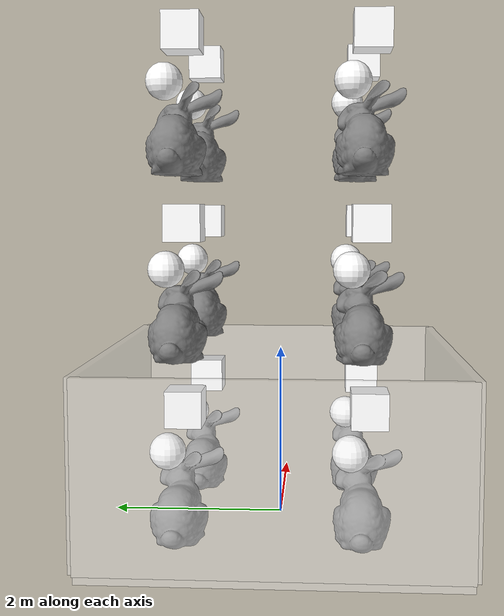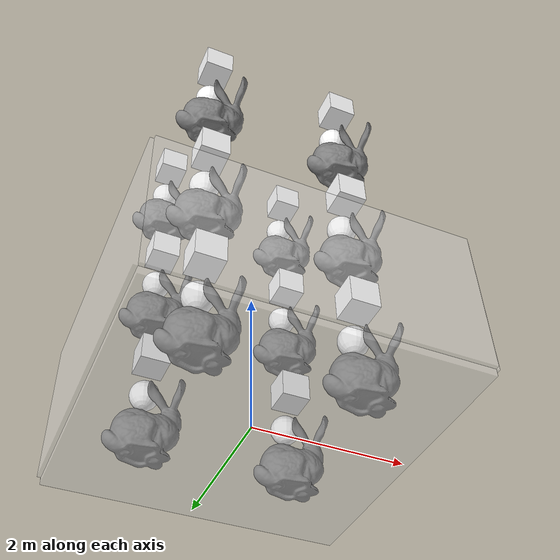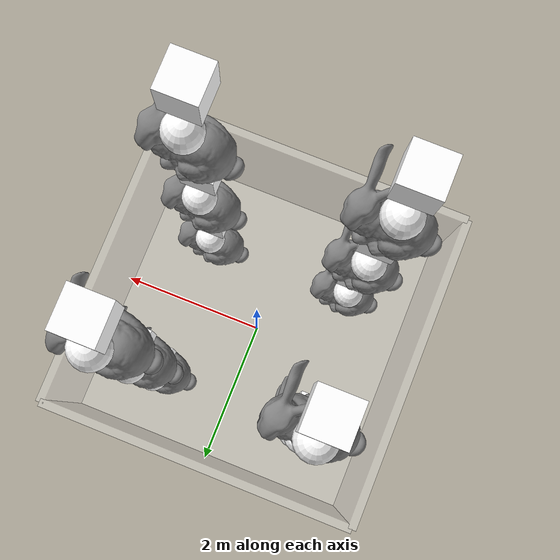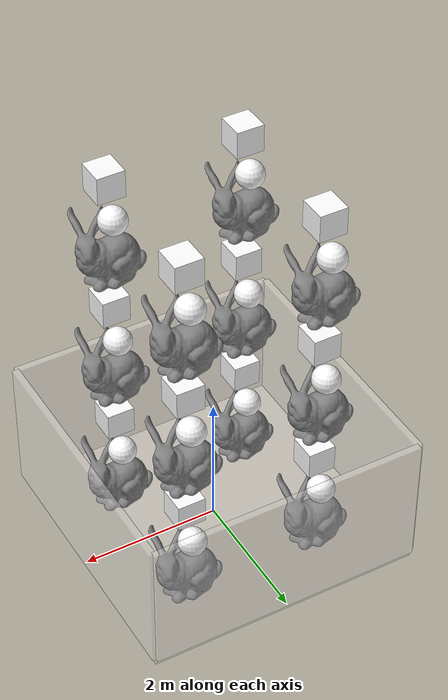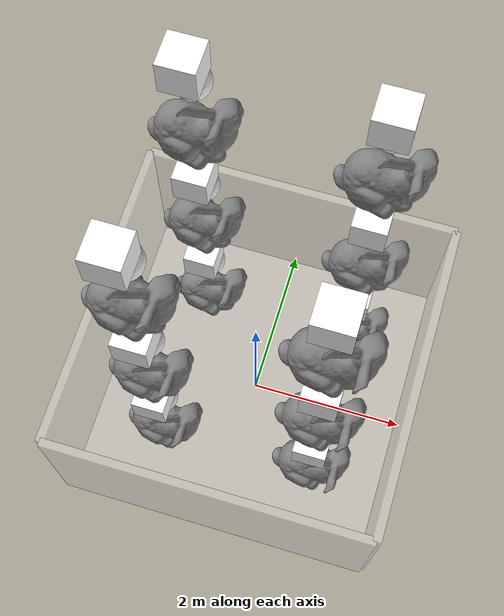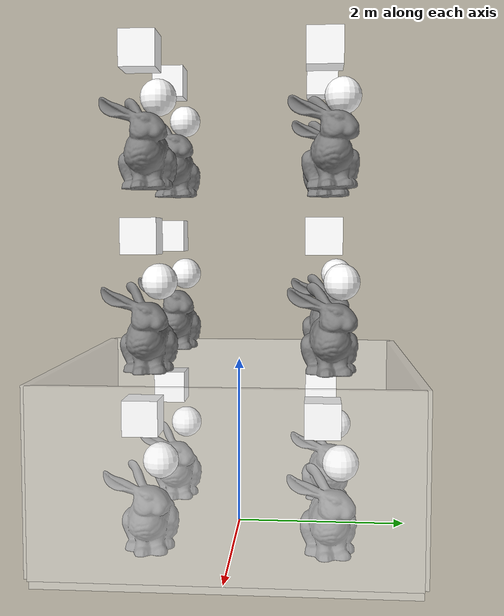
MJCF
<mujoco model="complicated_scene">
  <option integrator="implicitfast" cone="elliptic" />
  <default>
    <geom solimp="0.0 0.95 0.01" solref="0.001 1.0"/>
  </default>

  <asset>
    <mesh name="bunny_mesh" file="bunny.obj"/>
  </asset>

  <worldbody>
    <!-- A box to hold everything -->
    <geom name="base" type="box" pos="0.0 0.0 -0.05" size="2.0 2.0 0.05" rgba="1.0 1.0 1.0 0.3"/>
    <geom name="left" type="box" pos="2.0 0.0 1.0" size="0.05 2.0 1.0" rgba="1.0 1.0 1.0 0.3"/>
    <geom name="right" type="box" pos="-2.0 0.0 1.0" size="0.05 2.0 1.0" rgba="1.0 1.0 1.0 0.3"/>
    <geom name="front" type="box" pos="0.0 2.0 1.0" size="2.0 0.05 1.0" rgba="1.0 1.0 1.0 0.3"/>
    <geom name="back" type="box" pos="0.0 -2.0 1.0" size="2.0 0.05 1.0" rgba="1.0 1.0 1.0 0.3"/>

    <!-- We'll just repeat a stack of bunny, sphere, box a bunch of times -->
    <body>
      <joint type="free"/>
      <geom name="bunny1" type="mesh" pos="1.0 1.0 0.5" mesh="bunny_mesh"/>
    </body>
    <body>
      <joint type="free"/>
      <geom name="sphere1" type="sphere" pos="1.0 1.2 1.0" size="0.2" rgba="1.0 1.0 1.0 1.0"/>
    </body>
    <body>
      <joint type="free"/>
      <geom name="box1" type="box" pos="1.0 1.0 1.5" size="0.2 0.2 0.2" rgba="1.0 1.0 1.0 1.0"/>
    </body>
    <body>
      <joint type="free"/>
      <geom name="bunny2" type="mesh" pos="1.0 1.0 2.5" mesh="bunny_mesh"/>
    </body>
    <body>
      <joint type="free"/>
      <geom name="sphere2" type="sphere" pos="1.0 1.2 3.0" size="0.2" rgba="1.0 1.0 1.0 1.0"/>
    </body>
    <body>
      <joint type="free"/>
      <geom name="box2" type="box" pos="1.0 1.0 3.5" size="0.2 0.2 0.2" rgba="1.0 1.0 1.0 1.0"/>
    </body>
    <body>
      <joint type="free"/>
      <geom name="bunny3" type="mesh" pos="1.0 1.0 4.5" mesh="bunny_mesh"/>
    </body>
    <body>
      <joint type="free"/>
      <geom name="sphere3" type="sphere" pos="1.0 1.2 5.0" size="0.2" rgba="1.0 1.0 1.0 1.0"/>
    </body>
    <body>
      <joint type="free"/>
      <geom name="box3" type="box" pos="1.0 1.0 5.5" size="0.2 0.2 0.2" rgba="1.0 1.0 1.0 1.0"/>
    </body>

    <!-- Stack in the opposite corner -->
    <body>
      <joint type="free"/>
      <geom name="bunny4" type="mesh" pos="-1.0 -1.0 0.5" mesh="bunny_mesh"/>
    </body>
    <body>
      <joint type="free"/>
      <geom name="sphere4" type="sphere" pos="-1.0 -0.8 1.0" size="0.2" rgba="1.0 1.0 1.0 1.0"/>
    </body>
    <body>
      <joint type="free"/>
      <geom name="box4" type="box" pos="-1.0 -1.0 1.5" size="0.2 0.2 0.2" rgba="1.0 1.0 1.0 1.0"/>
    </body>
    <body>
      <joint type="free"/>
      <geom name="bunny5" type="mesh" pos="-1.0 -1.0 2.5" mesh="bunny_mesh"/>
    </body>
    <body>
      <joint type="free"/>
      <geom name="sphere5" type="sphere" pos="-1.0 -0.8 3.0" size="0.2" rgba="1.0 1.0 1.0 1.0"/>
    </body>
    <body>
      <joint type="free"/>
      <geom name="box5" type="box" pos="-1.0 -1.0 3.5" size="0.2 0.2 0.2" rgba="1.0 1.0 1.0 1.0"/>
    </body>
    <body>
      <joint type="free"/>
      <geom name="bunny6" type="mesh" pos="-1.0 -1.0 4.5" mesh="bunny_mesh"/>
    </body>
    <body>
      <joint type="free"/>
      <geom name="sphere6" type="sphere" pos="-1.0 -0.8 5.0" size="0.2" rgba="1.0 1.0 1.0 1.0"/>
    </body>
    <body>
      <joint type="free"/>
      <geom name="box6" type="box" pos="-1.0 -1.0 5.5" size="0.2 0.2 0.2" rgba="1.0 1.0 1.0 1.0"/>
    </body>

    <!-- Stack in another corner -->
    <body>
      <joint type="free"/>
      <geom name="bunny7" type="mesh" pos="1.0 -1.0 0.5" mesh="bunny_mesh"/>
    </body>
    <body>
      <joint type="free"/>
      <geom name="sphere7" type="sphere" pos="1.0 -0.8 1.0" size="0.2" rgba="1.0 1.0 1.0 1.0"/>
    </body>
    <body>
      <joint type="free"/>
      <geom name="box7" type="box" pos="1.0 -1.0 1.5" size="0.2 0.2 0.2" rgba="1.0 1.0 1.0 1.0"/>
    </body>
    <body>
      <joint type="free"/>
      <geom name="bunny8" type="mesh" pos="1.0 -1.0 2.5" mesh="bunny_mesh"/>
    </body>
    <body>
      <joint type="free"/>
      <geom name="sphere8" type="sphere" pos="1.0 -0.8 3.0" size="0.2" rgba="1.0 1.0 1.0 1.0"/>
    </body>
    <body>
      <joint type="free"/>
      <geom name="box8" type="box" pos="1.0 -1.0 3.5" size="0.2 0.2 0.2" rgba="1.0 1.0 1.0 1.0"/>
    </body>
    <body>
      <joint type="free"/>
      <geom name="bunny9" type="mesh" pos="1.0 -1.0 4.5" mesh="bunny_mesh"/>
    </body>
    <body>
      <joint type="free"/>
      <geom name="sphere9" type="sphere" pos="1.0 -0.8 5.0" size="0.2" rgba="1.0 1.0 1.0 1.0"/>
    </body>
    <body>
      <joint type="free"/>
      <geom name="box9" type="box" pos="1.0 -1.0 5.5" size="0.2 0.2 0.2" rgba="1.0 1.0 1.0 1.0"/>
    </body>

    <!-- Stack in the last corner -->
    <body>
      <joint type="free"/>
      <geom name="bunny10" type="mesh" pos="-1.0 1.0 0.5" mesh="bunny_mesh"/>
    </body>
    <body>
      <joint type="free"/>
      <geom name="sphere10" type="sphere" pos="-1.0 1.2 1.0" size="0.2" rgba="1.0 1.0 1.0 1.0"/>
    </body>
    <body>
      <joint type="free"/>
      <geom name="box10" type="box" pos="-1.0 1.0 1.5" size="0.2 0.2 0.2" rgba="1.0 1.0 1.0 1.0"/>
    </body>
    <body>
      <joint type="free"/>
      <geom name="bunny11" type="mesh" pos="-1.0 1.0 2.5" mesh="bunny_mesh"/>
    </body>
    <body>
      <joint type="free"/>
      <geom name="sphere11" type="sphere" pos="-1.0 1.2 3.0" size="0.2" rgba="1.0 1.0 1.0 1.0"/>
    </body>
    <body>
      <joint type="free"/>
      <geom name="box11" type="box" pos="-1.0 1.0 3.5" size="0.2 0.2 0.2" rgba="1.0 1.0 1.0 1.0"/>
    </body>
    <body>
      <joint type="free"/>
      <geom name="bunny12" type="mesh" pos="-1.0 1.0 4.5" mesh="bunny_mesh"/>
    </body>
    <body>
      <joint type="free"/>
      <geom name="sphere12" type="sphere" pos="-1.0 1.2 5.0" size="0.2" rgba="1.0 1.0 1.0 1.0"/>
    </body>
    <body>
      <joint type="free"/>
      <geom name="box12" type="box" pos="-1.0 1.0 5.5" size="0.2 0.2 0.2" rgba="1.0 1.0 1.0 1.0"/>
    </body>
  </worldbody>
</mujoco>
